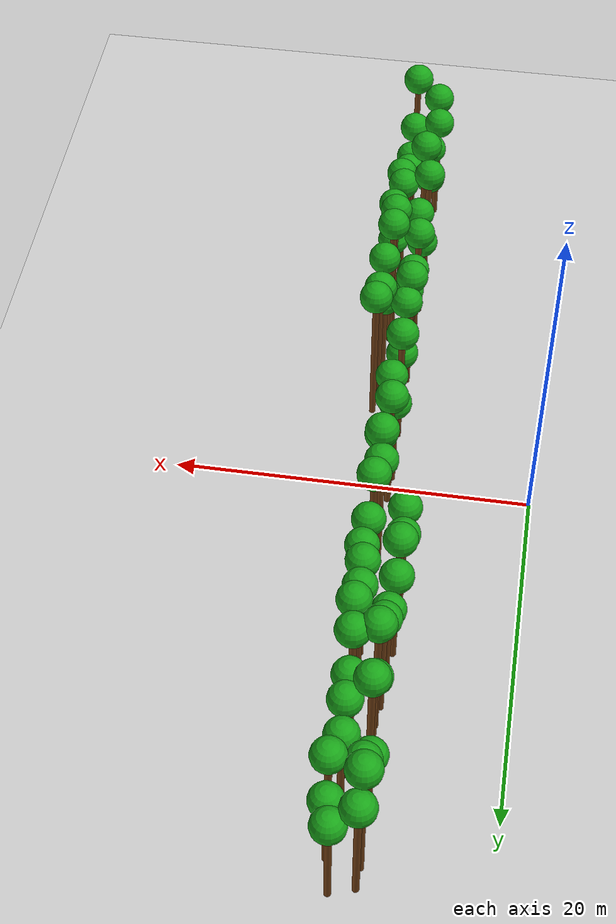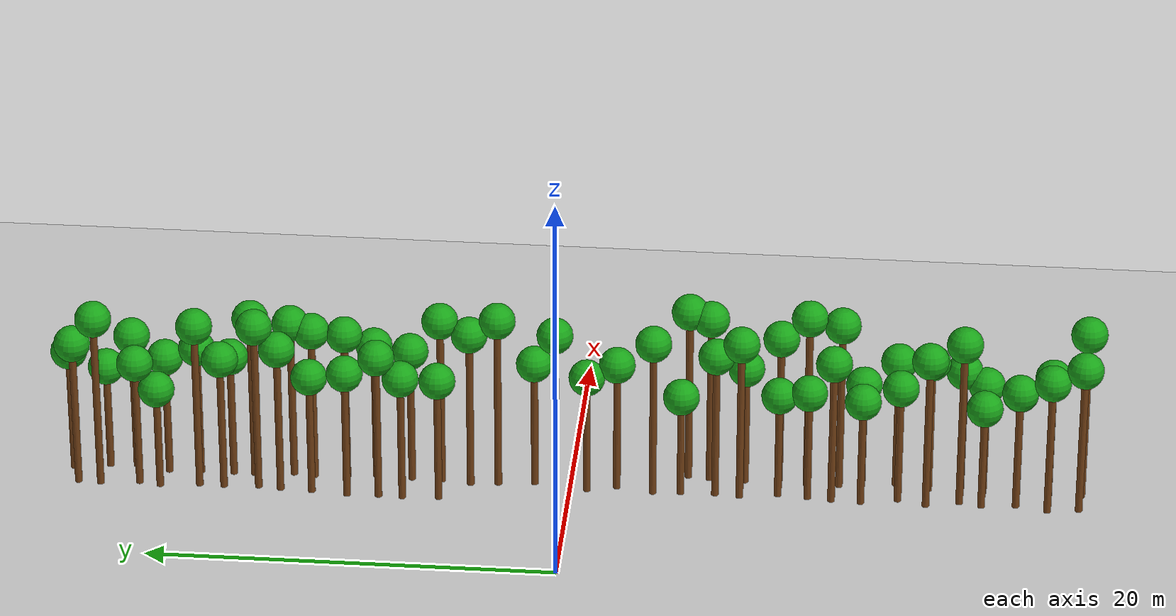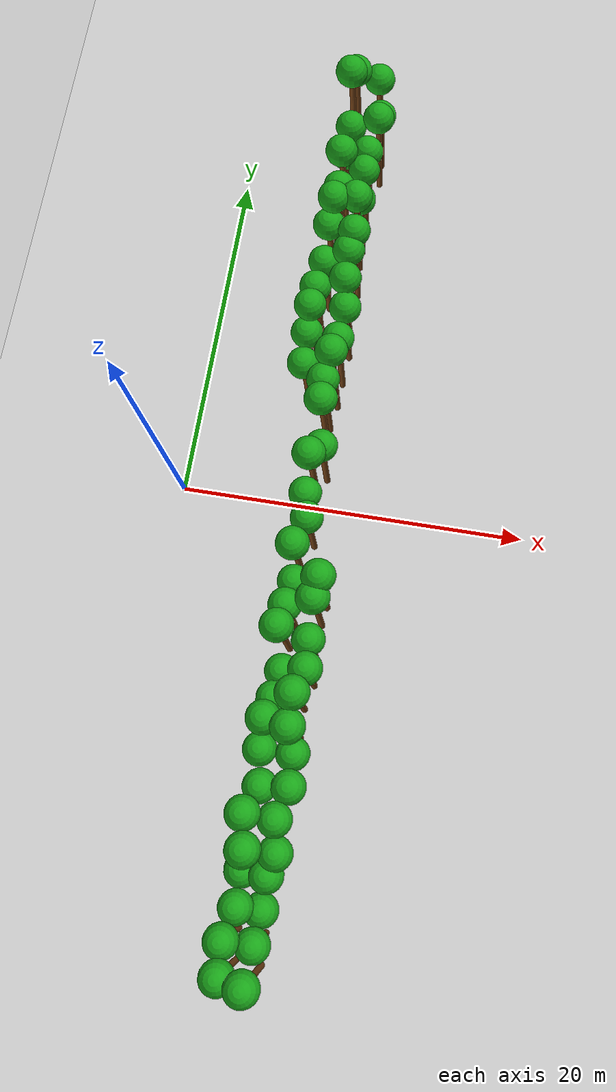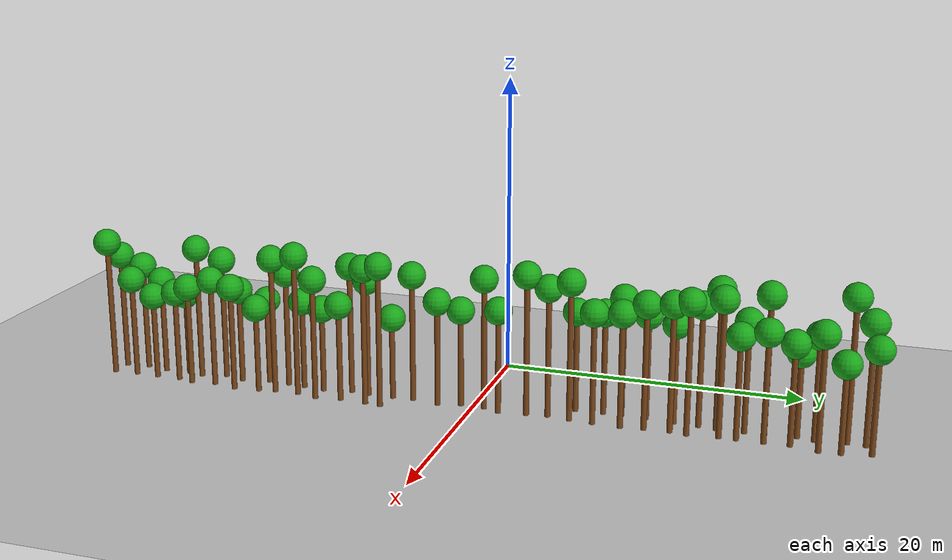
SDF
<sdf version="1.6">
 <world name="forest_world">
  <include><uri>model://sun</uri></include>
  <include><uri>model://ground_plane</uri></include>
  <model name="tree_722">
   <static>true</static>
   <link name="trunk">
    <collision name="collision">
     <pose>6.43 6.38 3.09 0 0 0</pose>
     <geometry><cylinder><radius>0.18</radius><length>6.18</length></cylinder></geometry>
    </collision>
    <visual name="trunk_visual">
     <pose>6.43 6.38 3.09 0 0 0</pose>
     <geometry><cylinder><radius>0.18</radius><length>6.18</length></cylinder></geometry>
     <material><ambient>0.35 0.20 0.05 1</ambient><diffuse>0.45 0.25 0.08 1</diffuse></material>
    </visual>
    <visual name="leaf_visual">
     <pose>6.43 6.38 6.63 0 0 0</pose>
     <geometry><sphere><radius>0.9</radius></sphere></geometry>
     <material><ambient>0.05 0.45 0.05 1</ambient><diffuse>0.10 0.65 0.10 1</diffuse></material>
    </visual>
   </link>
  </model>
  <model name="tree_723">
   <static>true</static>
   <link name="trunk">
    <collision name="collision">
     <pose>6.33 8.17 3.13 0 0 0</pose>
     <geometry><cylinder><radius>0.18</radius><length>6.26</length></cylinder></geometry>
    </collision>
    <visual name="trunk_visual">
     <pose>6.33 8.17 3.13 0 0 0</pose>
     <geometry><cylinder><radius>0.18</radius><length>6.26</length></cylinder></geometry>
     <material><ambient>0.35 0.20 0.05 1</ambient><diffuse>0.45 0.25 0.08 1</diffuse></material>
    </visual>
    <visual name="leaf_visual">
     <pose>6.33 8.17 6.71 0 0 0</pose>
     <geometry><sphere><radius>0.9</radius></sphere></geometry>
     <material><ambient>0.05 0.45 0.05 1</ambient><diffuse>0.10 0.65 0.10 1</diffuse></material>
    </visual>
   </link>
  </model>
  <model name="tree_724">
   <static>true</static>
   <link name="trunk">
    <collision name="collision">
     <pose>6.37 9.35 3.68 0 0 0</pose>
     <geometry><cylinder><radius>0.18</radius><length>7.36</length></cylinder></geometry>
    </collision>
    <visual name="trunk_visual">
     <pose>6.37 9.35 3.68 0 0 0</pose>
     <geometry><cylinder><radius>0.18</radius><length>7.36</length></cylinder></geometry>
     <material><ambient>0.35 0.20 0.05 1</ambient><diffuse>0.45 0.25 0.08 1</diffuse></material>
    </visual>
    <visual name="leaf_visual">
     <pose>6.37 9.35 7.81 0 0 0</pose>
     <geometry><sphere><radius>0.9</radius></sphere></geometry>
     <material><ambient>0.05 0.45 0.05 1</ambient><diffuse>0.10 0.65 0.10 1</diffuse></material>
    </visual>
   </link>
  </model>
  <model name="tree_725">
   <static>true</static>
   <link name="trunk">
    <collision name="collision">
     <pose>6.34 10.91 3.21 0 0 0</pose>
     <geometry><cylinder><radius>0.18</radius><length>6.42</length></cylinder></geometry>
    </collision>
    <visual name="trunk_visual">
     <pose>6.34 10.91 3.21 0 0 0</pose>
     <geometry><cylinder><radius>0.18</radius><length>6.42</length></cylinder></geometry>
     <material><ambient>0.35 0.20 0.05 1</ambient><diffuse>0.45 0.25 0.08 1</diffuse></material>
    </visual>
    <visual name="leaf_visual">
     <pose>6.34 10.91 6.87 0 0 0</pose>
     <geometry><sphere><radius>0.9</radius></sphere></geometry>
     <material><ambient>0.05 0.45 0.05 1</ambient><diffuse>0.10 0.65 0.10 1</diffuse></material>
    </visual>
   </link>
  </model>
  <model name="tree_726">
   <static>true</static>
   <link name="trunk">
    <collision name="collision">
     <pose>6.51 12.68 3.02 0 0 0</pose>
     <geometry><cylinder><radius>0.18</radius><length>6.04</length></cylinder></geometry>
    </collision>
    <visual name="trunk_visual">
     <pose>6.51 12.68 3.02 0 0 0</pose>
     <geometry><cylinder><radius>0.18</radius><length>6.04</length></cylinder></geometry>
     <material><ambient>0.35 0.20 0.05 1</ambient><diffuse>0.45 0.25 0.08 1</diffuse></material>
    </visual>
    <visual name="leaf_visual">
     <pose>6.51 12.68 6.49 0 0 0</pose>
     <geometry><sphere><radius>0.9</radius></sphere></geometry>
     <material><ambient>0.05 0.45 0.05 1</ambient><diffuse>0.10 0.65 0.10 1</diffuse></material>
    </visual>
   </link>
  </model>
  <model name="tree_727">
   <static>true</static>
   <link name="trunk">
    <collision name="collision">
     <pose>6.58 14.24 3.74 0 0 0</pose>
     <geometry><cylinder><radius>0.18</radius><length>7.47</length></cylinder></geometry>
    </collision>
    <visual name="trunk_visual">
     <pose>6.58 14.24 3.74 0 0 0</pose>
     <geometry><cylinder><radius>0.18</radius><length>7.47</length></cylinder></geometry>
     <material><ambient>0.35 0.20 0.05 1</ambient><diffuse>0.45 0.25 0.08 1</diffuse></material>
    </visual>
    <visual name="leaf_visual">
     <pose>6.58 14.24 7.92 0 0 0</pose>
     <geometry><sphere><radius>0.9</radius></sphere></geometry>
     <material><ambient>0.05 0.45 0.05 1</ambient><diffuse>0.10 0.65 0.10 1</diffuse></material>
    </visual>
   </link>
  </model>
  <model name="tree_728">
   <static>true</static>
   <link name="trunk">
    <collision name="collision">
     <pose>6.72 15.35 4.29 0 0 0</pose>
     <geometry><cylinder><radius>0.18</radius><length>8.58</length></cylinder></geometry>
    </collision>
    <visual name="trunk_visual">
     <pose>6.72 15.35 4.29 0 0 0</pose>
     <geometry><cylinder><radius>0.18</radius><length>8.58</length></cylinder></geometry>
     <material><ambient>0.35 0.20 0.05 1</ambient><diffuse>0.45 0.25 0.08 1</diffuse></material>
    </visual>
    <visual name="leaf_visual">
     <pose>6.72 15.35 9.03 0 0 0</pose>
     <geometry><sphere><radius>0.9</radius></sphere></geometry>
     <material><ambient>0.05 0.45 0.05 1</ambient><diffuse>0.10 0.65 0.10 1</diffuse></material>
    </visual>
   </link>
  </model>
  <model name="tree_729">
   <static>true</static>
   <link name="trunk">
    <collision name="collision">
     <pose>6.65 17.07 3.36 0 0 0</pose>
     <geometry><cylinder><radius>0.18</radius><length>6.73</length></cylinder></geometry>
    </collision>
    <visual name="trunk_visual">
     <pose>6.65 17.07 3.36 0 0 0</pose>
     <geometry><cylinder><radius>0.18</radius><length>6.73</length></cylinder></geometry>
     <material><ambient>0.35 0.20 0.05 1</ambient><diffuse>0.45 0.25 0.08 1</diffuse></material>
    </visual>
    <visual name="leaf_visual">
     <pose>6.65 17.07 7.18 0 0 0</pose>
     <geometry><sphere><radius>0.9</radius></sphere></geometry>
     <material><ambient>0.05 0.45 0.05 1</ambient><diffuse>0.10 0.65 0.10 1</diffuse></material>
    </visual>
   </link>
  </model>
  <model name="tree_730">
   <static>true</static>
   <link name="trunk">
    <collision name="collision">
     <pose>6.65 18.28 4.26 0 0 0</pose>
     <geometry><cylinder><radius>0.18</radius><length>8.52</length></cylinder></geometry>
    </collision>
    <visual name="trunk_visual">
     <pose>6.65 18.28 4.26 0 0 0</pose>
     <geometry><cylinder><radius>0.18</radius><length>8.52</length></cylinder></geometry>
     <material><ambient>0.35 0.20 0.05 1</ambient><diffuse>0.45 0.25 0.08 1</diffuse></material>
    </visual>
    <visual name="leaf_visual">
     <pose>6.65 18.28 8.97 0 0 0</pose>
     <geometry><sphere><radius>0.9</radius></sphere></geometry>
     <material><ambient>0.05 0.45 0.05 1</ambient><diffuse>0.10 0.65 0.10 1</diffuse></material>
    </visual>
   </link>
  </model>
  <model name="tree_731">
   <static>true</static>
   <link name="trunk">
    <collision name="collision">
     <pose>6.43 20.22 2.51 0 0 0</pose>
     <geometry><cylinder><radius>0.18</radius><length>5.02</length></cylinder></geometry>
    </collision>
    <visual name="trunk_visual">
     <pose>6.43 20.22 2.51 0 0 0</pose>
     <geometry><cylinder><radius>0.18</radius><length>5.02</length></cylinder></geometry>
     <material><ambient>0.35 0.20 0.05 1</ambient><diffuse>0.45 0.25 0.08 1</diffuse></material>
    </visual>
    <visual name="leaf_visual">
     <pose>6.43 20.22 5.47 0 0 0</pose>
     <geometry><sphere><radius>0.9</radius></sphere></geometry>
     <material><ambient>0.05 0.45 0.05 1</ambient><diffuse>0.10 0.65 0.10 1</diffuse></material>
    </visual>
   </link>
  </model>
  <model name="tree_732">
   <static>true</static>
   <link name="trunk">
    <collision name="collision">
     <pose>6.63 21.27 3.15 0 0 0</pose>
     <geometry><cylinder><radius>0.18</radius><length>6.31</length></cylinder></geometry>
    </collision>
    <visual name="trunk_visual">
     <pose>6.63 21.27 3.15 0 0 0</pose>
     <geometry><cylinder><radius>0.18</radius><length>6.31</length></cylinder></geometry>
     <material><ambient>0.35 0.20 0.05 1</ambient><diffuse>0.45 0.25 0.08 1</diffuse></material>
    </visual>
    <visual name="leaf_visual">
     <pose>6.63 21.27 6.76 0 0 0</pose>
     <geometry><sphere><radius>0.9</radius></sphere></geometry>
     <material><ambient>0.05 0.45 0.05 1</ambient><diffuse>0.10 0.65 0.10 1</diffuse></material>
    </visual>
   </link>
  </model>
  <model name="tree_733">
   <static>true</static>
   <link name="trunk">
    <collision name="collision">
     <pose>6.41 23.19 4.40 0 0 0</pose>
     <geometry><cylinder><radius>0.18</radius><length>8.81</length></cylinder></geometry>
    </collision>
    <visual name="trunk_visual">
     <pose>6.41 23.19 4.40 0 0 0</pose>
     <geometry><cylinder><radius>0.18</radius><length>8.81</length></cylinder></geometry>
     <material><ambient>0.35 0.20 0.05 1</ambient><diffuse>0.45 0.25 0.08 1</diffuse></material>
    </visual>
    <visual name="leaf_visual">
     <pose>6.41 23.19 9.26 0 0 0</pose>
     <geometry><sphere><radius>0.9</radius></sphere></geometry>
     <material><ambient>0.05 0.45 0.05 1</ambient><diffuse>0.10 0.65 0.10 1</diffuse></material>
    </visual>
   </link>
  </model>
  <model name="tree_734">
   <static>true</static>
   <link name="trunk">
    <collision name="collision">
     <pose>6.48 24.30 3.67 0 0 0</pose>
     <geometry><cylinder><radius>0.18</radius><length>7.35</length></cylinder></geometry>
    </collision>
    <visual name="trunk_visual">
     <pose>6.48 24.30 3.67 0 0 0</pose>
     <geometry><cylinder><radius>0.18</radius><length>7.35</length></cylinder></geometry>
     <material><ambient>0.35 0.20 0.05 1</ambient><diffuse>0.45 0.25 0.08 1</diffuse></material>
    </visual>
    <visual name="leaf_visual">
     <pose>6.48 24.30 7.80 0 0 0</pose>
     <geometry><sphere><radius>0.9</radius></sphere></geometry>
     <material><ambient>0.05 0.45 0.05 1</ambient><diffuse>0.10 0.65 0.10 1</diffuse></material>
    </visual>
   </link>
  </model>
  <model name="tree_735">
   <static>true</static>
   <link name="trunk">
    <collision name="collision">
     <pose>7.98 -25.03 3.73 0 0 0</pose>
     <geometry><cylinder><radius>0.18</radius><length>7.46</length></cylinder></geometry>
    </collision>
    <visual name="trunk_visual">
     <pose>7.98 -25.03 3.73 0 0 0</pose>
     <geometry><cylinder><radius>0.18</radius><length>7.46</length></cylinder></geometry>
     <material><ambient>0.35 0.20 0.05 1</ambient><diffuse>0.45 0.25 0.08 1</diffuse></material>
    </visual>
    <visual name="leaf_visual">
     <pose>7.98 -25.03 7.91 0 0 0</pose>
     <geometry><sphere><radius>0.9</radius></sphere></geometry>
     <material><ambient>0.05 0.45 0.05 1</ambient><diffuse>0.10 0.65 0.10 1</diffuse></material>
    </visual>
   </link>
  </model>
  <model name="tree_736">
   <static>true</static>
   <link name="trunk">
    <collision name="collision">
     <pose>7.78 -23.49 3.39 0 0 0</pose>
     <geometry><cylinder><radius>0.18</radius><length>6.79</length></cylinder></geometry>
    </collision>
    <visual name="trunk_visual">
     <pose>7.78 -23.49 3.39 0 0 0</pose>
     <geometry><cylinder><radius>0.18</radius><length>6.79</length></cylinder></geometry>
     <material><ambient>0.35 0.20 0.05 1</ambient><diffuse>0.45 0.25 0.08 1</diffuse></material>
    </visual>
    <visual name="leaf_visual">
     <pose>7.78 -23.49 7.24 0 0 0</pose>
     <geometry><sphere><radius>0.9</radius></sphere></geometry>
     <material><ambient>0.05 0.45 0.05 1</ambient><diffuse>0.10 0.65 0.10 1</diffuse></material>
    </visual>
   </link>
  </model>
  <model name="tree_737">
   <static>true</static>
   <link name="trunk">
    <collision name="collision">
     <pose>8.10 -21.94 3.00 0 0 0</pose>
     <geometry><cylinder><radius>0.18</radius><length>5.99</length></cylinder></geometry>
    </collision>
    <visual name="trunk_visual">
     <pose>8.10 -21.94 3.00 0 0 0</pose>
     <geometry><cylinder><radius>0.18</radius><length>5.99</length></cylinder></geometry>
     <material><ambient>0.35 0.20 0.05 1</ambient><diffuse>0.45 0.25 0.08 1</diffuse></material>
    </visual>
    <visual name="leaf_visual">
     <pose>8.10 -21.94 6.44 0 0 0</pose>
     <geometry><sphere><radius>0.9</radius></sphere></geometry>
     <material><ambient>0.05 0.45 0.05 1</ambient><diffuse>0.10 0.65 0.10 1</diffuse></material>
    </visual>
   </link>
  </model>
  <model name="tree_738">
   <static>true</static>
   <link name="trunk">
    <collision name="collision">
     <pose>7.96 -20.25 2.55 0 0 0</pose>
     <geometry><cylinder><radius>0.18</radius><length>5.10</length></cylinder></geometry>
    </collision>
    <visual name="trunk_visual">
     <pose>7.96 -20.25 2.55 0 0 0</pose>
     <geometry><cylinder><radius>0.18</radius><length>5.10</length></cylinder></geometry>
     <material><ambient>0.35 0.20 0.05 1</ambient><diffuse>0.45 0.25 0.08 1</diffuse></material>
    </visual>
    <visual name="leaf_visual">
     <pose>7.96 -20.25 5.55 0 0 0</pose>
     <geometry><sphere><radius>0.9</radius></sphere></geometry>
     <material><ambient>0.05 0.45 0.05 1</ambient><diffuse>0.10 0.65 0.10 1</diffuse></material>
    </visual>
   </link>
  </model>
  <model name="tree_739">
   <static>true</static>
   <link name="trunk">
    <collision name="collision">
     <pose>8.20 -19.17 4.24 0 0 0</pose>
     <geometry><cylinder><radius>0.18</radius><length>8.48</length></cylinder></geometry>
    </collision>
    <visual name="trunk_visual">
     <pose>8.20 -19.17 4.24 0 0 0</pose>
     <geometry><cylinder><radius>0.18</radius><length>8.48</length></cylinder></geometry>
     <material><ambient>0.35 0.20 0.05 1</ambient><diffuse>0.45 0.25 0.08 1</diffuse></material>
    </visual>
    <visual name="leaf_visual">
     <pose>8.20 -19.17 8.93 0 0 0</pose>
     <geometry><sphere><radius>0.9</radius></sphere></geometry>
     <material><ambient>0.05 0.45 0.05 1</ambient><diffuse>0.10 0.65 0.10 1</diffuse></material>
    </visual>
   </link>
  </model>
  <model name="tree_740">
   <static>true</static>
   <link name="trunk">
    <collision name="collision">
     <pose>7.79 -17.53 3.86 0 0 0</pose>
     <geometry><cylinder><radius>0.18</radius><length>7.72</length></cylinder></geometry>
    </collision>
    <visual name="trunk_visual">
     <pose>7.79 -17.53 3.86 0 0 0</pose>
     <geometry><cylinder><radius>0.18</radius><length>7.72</length></cylinder></geometry>
     <material><ambient>0.35 0.20 0.05 1</ambient><diffuse>0.45 0.25 0.08 1</diffuse></material>
    </visual>
    <visual name="leaf_visual">
     <pose>7.79 -17.53 8.17 0 0 0</pose>
     <geometry><sphere><radius>0.9</radius></sphere></geometry>
     <material><ambient>0.05 0.45 0.05 1</ambient><diffuse>0.10 0.65 0.10 1</diffuse></material>
    </visual>
   </link>
  </model>
  <model name="tree_741">
   <static>true</static>
   <link name="trunk">
    <collision name="collision">
     <pose>8.19 -16.14 2.94 0 0 0</pose>
     <geometry><cylinder><radius>0.18</radius><length>5.89</length></cylinder></geometry>
    </collision>
    <visual name="trunk_visual">
     <pose>8.19 -16.14 2.94 0 0 0</pose>
     <geometry><cylinder><radius>0.18</radius><length>5.89</length></cylinder></geometry>
     <material><ambient>0.35 0.20 0.05 1</ambient><diffuse>0.45 0.25 0.08 1</diffuse></material>
    </visual>
    <visual name="leaf_visual">
     <pose>8.19 -16.14 6.34 0 0 0</pose>
     <geometry><sphere><radius>0.9</radius></sphere></geometry>
     <material><ambient>0.05 0.45 0.05 1</ambient><diffuse>0.10 0.65 0.10 1</diffuse></material>
    </visual>
   </link>
  </model>
  <model name="tree_742">
   <static>true</static>
   <link name="trunk">
    <collision name="collision">
     <pose>7.79 -14.33 2.64 0 0 0</pose>
     <geometry><cylinder><radius>0.18</radius><length>5.28</length></cylinder></geometry>
    </collision>
    <visual name="trunk_visual">
     <pose>7.79 -14.33 2.64 0 0 0</pose>
     <geometry><cylinder><radius>0.18</radius><length>5.28</length></cylinder></geometry>
     <material><ambient>0.35 0.20 0.05 1</ambient><diffuse>0.45 0.25 0.08 1</diffuse></material>
    </visual>
    <visual name="leaf_visual">
     <pose>7.79 -14.33 5.73 0 0 0</pose>
     <geometry><sphere><radius>0.9</radius></sphere></geometry>
     <material><ambient>0.05 0.45 0.05 1</ambient><diffuse>0.10 0.65 0.10 1</diffuse></material>
    </visual>
   </link>
  </model>
  <model name="tree_743">
   <static>true</static>
   <link name="trunk">
    <collision name="collision">
     <pose>7.88 -12.88 3.63 0 0 0</pose>
     <geometry><cylinder><radius>0.18</radius><length>7.27</length></cylinder></geometry>
    </collision>
    <visual name="trunk_visual">
     <pose>7.88 -12.88 3.63 0 0 0</pose>
     <geometry><cylinder><radius>0.18</radius><length>7.27</length></cylinder></geometry>
     <material><ambient>0.35 0.20 0.05 1</ambient><diffuse>0.45 0.25 0.08 1</diffuse></material>
    </visual>
    <visual name="leaf_visual">
     <pose>7.88 -12.88 7.72 0 0 0</pose>
     <geometry><sphere><radius>0.9</radius></sphere></geometry>
     <material><ambient>0.05 0.45 0.05 1</ambient><diffuse>0.10 0.65 0.10 1</diffuse></material>
    </visual>
   </link>
  </model>
  <model name="tree_744">
   <static>true</static>
   <link name="trunk">
    <collision name="collision">
     <pose>8.01 -11.70 2.75 0 0 0</pose>
     <geometry><cylinder><radius>0.18</radius><length>5.50</length></cylinder></geometry>
    </collision>
    <visual name="trunk_visual">
     <pose>8.01 -11.70 2.75 0 0 0</pose>
     <geometry><cylinder><radius>0.18</radius><length>5.50</length></cylinder></geometry>
     <material><ambient>0.35 0.20 0.05 1</ambient><diffuse>0.45 0.25 0.08 1</diffuse></material>
    </visual>
    <visual name="leaf_visual">
     <pose>8.01 -11.70 5.95 0 0 0</pose>
     <geometry><sphere><radius>0.9</radius></sphere></geometry>
     <material><ambient>0.05 0.45 0.05 1</ambient><diffuse>0.10 0.65 0.10 1</diffuse></material>
    </visual>
   </link>
  </model>
  <model name="tree_745">
   <static>true</static>
   <link name="trunk">
    <collision name="collision">
     <pose>8.16 -10.24 2.60 0 0 0</pose>
     <geometry><cylinder><radius>0.18</radius><length>5.20</length></cylinder></geometry>
    </collision>
    <visual name="trunk_visual">
     <pose>8.16 -10.24 2.60 0 0 0</pose>
     <geometry><cylinder><radius>0.18</radius><length>5.20</length></cylinder></geometry>
     <material><ambient>0.35 0.20 0.05 1</ambient><diffuse>0.45 0.25 0.08 1</diffuse></material>
    </visual>
    <visual name="leaf_visual">
     <pose>8.16 -10.24 5.65 0 0 0</pose>
     <geometry><sphere><radius>0.9</radius></sphere></geometry>
     <material><ambient>0.05 0.45 0.05 1</ambient><diffuse>0.10 0.65 0.10 1</diffuse></material>
    </visual>
   </link>
  </model>
  <model name="tree_746">
   <static>true</static>
   <link name="trunk">
    <collision name="collision">
     <pose>7.83 -8.37 4.08 0 0 0</pose>
     <geometry><cylinder><radius>0.18</radius><length>8.15</length></cylinder></geometry>
    </collision>
    <visual name="trunk_visual">
     <pose>7.83 -8.37 4.08 0 0 0</pose>
     <geometry><cylinder><radius>0.18</radius><length>8.15</length></cylinder></geometry>
     <material><ambient>0.35 0.20 0.05 1</ambient><diffuse>0.45 0.25 0.08 1</diffuse></material>
    </visual>
    <visual name="leaf_visual">
     <pose>7.83 -8.37 8.60 0 0 0</pose>
     <geometry><sphere><radius>0.9</radius></sphere></geometry>
     <material><ambient>0.05 0.45 0.05 1</ambient><diffuse>0.10 0.65 0.10 1</diffuse></material>
    </visual>
   </link>
  </model>
  <model name="tree_747">
   <static>true</static>
   <link name="trunk">
    <collision name="collision">
     <pose>7.97 -7.15 3.67 0 0 0</pose>
     <geometry><cylinder><radius>0.18</radius><length>7.35</length></cylinder></geometry>
    </collision>
    <visual name="trunk_visual">
     <pose>7.97 -7.15 3.67 0 0 0</pose>
     <geometry><cylinder><radius>0.18</radius><length>7.35</length></cylinder></geometry>
     <material><ambient>0.35 0.20 0.05 1</ambient><diffuse>0.45 0.25 0.08 1</diffuse></material>
    </visual>
    <visual name="leaf_visual">
     <pose>7.97 -7.15 7.80 0 0 0</pose>
     <geometry><sphere><radius>0.9</radius></sphere></geometry>
     <material><ambient>0.05 0.45 0.05 1</ambient><diffuse>0.10 0.65 0.10 1</diffuse></material>
    </visual>
   </link>
  </model>
  <model name="tree_748">
   <static>true</static>
   <link name="trunk">
    <collision name="collision">
     <pose>7.94 -5.45 2.50 0 0 0</pose>
     <geometry><cylinder><radius>0.18</radius><length>5.01</length></cylinder></geometry>
    </collision>
    <visual name="trunk_visual">
     <pose>7.94 -5.45 2.50 0 0 0</pose>
     <geometry><cylinder><radius>0.18</radius><length>5.01</length></cylinder></geometry>
     <material><ambient>0.35 0.20 0.05 1</ambient><diffuse>0.45 0.25 0.08 1</diffuse></material>
    </visual>
    <visual name="leaf_visual">
     <pose>7.94 -5.45 5.46 0 0 0</pose>
     <geometry><sphere><radius>0.9</radius></sphere></geometry>
     <material><ambient>0.05 0.45 0.05 1</ambient><diffuse>0.10 0.65 0.10 1</diffuse></material>
    </visual>
   </link>
  </model>
  <model name="tree_749">
   <static>true</static>
   <link name="trunk">
    <collision name="collision">
     <pose>7.85 -4.08 3.98 0 0 0</pose>
     <geometry><cylinder><radius>0.18</radius><length>7.97</length></cylinder></geometry>
    </collision>
    <visual name="trunk_visual">
     <pose>7.85 -4.08 3.98 0 0 0</pose>
     <geometry><cylinder><radius>0.18</radius><length>7.97</length></cylinder></geometry>
     <material><ambient>0.35 0.20 0.05 1</ambient><diffuse>0.45 0.25 0.08 1</diffuse></material>
    </visual>
    <visual name="leaf_visual">
     <pose>7.85 -4.08 8.42 0 0 0</pose>
     <geometry><sphere><radius>0.9</radius></sphere></geometry>
     <material><ambient>0.05 0.45 0.05 1</ambient><diffuse>0.10 0.65 0.10 1</diffuse></material>
    </visual>
   </link>
  </model>
  <model name="tree_750">
   <static>true</static>
   <link name="trunk">
    <collision name="collision">
     <pose>8.18 -2.28 3.26 0 0 0</pose>
     <geometry><cylinder><radius>0.18</radius><length>6.51</length></cylinder></geometry>
    </collision>
    <visual name="trunk_visual">
     <pose>8.18 -2.28 3.26 0 0 0</pose>
     <geometry><cylinder><radius>0.18</radius><length>6.51</length></cylinder></geometry>
     <material><ambient>0.35 0.20 0.05 1</ambient><diffuse>0.45 0.25 0.08 1</diffuse></material>
    </visual>
    <visual name="leaf_visual">
     <pose>8.18 -2.28 6.96 0 0 0</pose>
     <geometry><sphere><radius>0.9</radius></sphere></geometry>
     <material><ambient>0.05 0.45 0.05 1</ambient><diffuse>0.10 0.65 0.10 1</diffuse></material>
    </visual>
   </link>
  </model>
  <model name="tree_751">
   <static>true</static>
   <link name="trunk">
    <collision name="collision">
     <pose>7.80 -0.83 2.98 0 0 0</pose>
     <geometry><cylinder><radius>0.18</radius><length>5.95</length></cylinder></geometry>
    </collision>
    <visual name="trunk_visual">
     <pose>7.80 -0.83 2.98 0 0 0</pose>
     <geometry><cylinder><radius>0.18</radius><length>5.95</length></cylinder></geometry>
     <material><ambient>0.35 0.20 0.05 1</ambient><diffuse>0.45 0.25 0.08 1</diffuse></material>
    </visual>
    <visual name="leaf_visual">
     <pose>7.80 -0.83 6.40 0 0 0</pose>
     <geometry><sphere><radius>0.9</radius></sphere></geometry>
     <material><ambient>0.05 0.45 0.05 1</ambient><diffuse>0.10 0.65 0.10 1</diffuse></material>
    </visual>
   </link>
  </model>
  <model name="tree_752">
   <static>true</static>
   <link name="trunk">
    <collision name="collision">
     <pose>7.86 0.74 4.10 0 0 0</pose>
     <geometry><cylinder><radius>0.18</radius><length>8.19</length></cylinder></geometry>
    </collision>
    <visual name="trunk_visual">
     <pose>7.86 0.74 4.10 0 0 0</pose>
     <geometry><cylinder><radius>0.18</radius><length>8.19</length></cylinder></geometry>
     <material><ambient>0.35 0.20 0.05 1</ambient><diffuse>0.45 0.25 0.08 1</diffuse></material>
    </visual>
    <visual name="leaf_visual">
     <pose>7.86 0.74 8.64 0 0 0</pose>
     <geometry><sphere><radius>0.9</radius></sphere></geometry>
     <material><ambient>0.05 0.45 0.05 1</ambient><diffuse>0.10 0.65 0.10 1</diffuse></material>
    </visual>
   </link>
  </model>
  <model name="tree_753">
   <static>true</static>
   <link name="trunk">
    <collision name="collision">
     <pose>8.24 1.79 3.17 0 0 0</pose>
     <geometry><cylinder><radius>0.18</radius><length>6.34</length></cylinder></geometry>
    </collision>
    <visual name="trunk_visual">
     <pose>8.24 1.79 3.17 0 0 0</pose>
     <geometry><cylinder><radius>0.18</radius><length>6.34</length></cylinder></geometry>
     <material><ambient>0.35 0.20 0.05 1</ambient><diffuse>0.45 0.25 0.08 1</diffuse></material>
    </visual>
    <visual name="leaf_visual">
     <pose>8.24 1.79 6.79 0 0 0</pose>
     <geometry><sphere><radius>0.9</radius></sphere></geometry>
     <material><ambient>0.05 0.45 0.05 1</ambient><diffuse>0.10 0.65 0.10 1</diffuse></material>
    </visual>
   </link>
  </model>
  <model name="tree_754">
   <static>true</static>
   <link name="trunk">
    <collision name="collision">
     <pose>8.03 3.58 4.39 0 0 0</pose>
     <geometry><cylinder><radius>0.18</radius><length>8.77</length></cylinder></geometry>
    </collision>
    <visual name="trunk_visual">
     <pose>8.03 3.58 4.39 0 0 0</pose>
     <geometry><cylinder><radius>0.18</radius><length>8.77</length></cylinder></geometry>
     <material><ambient>0.35 0.20 0.05 1</ambient><diffuse>0.45 0.25 0.08 1</diffuse></material>
    </visual>
    <visual name="leaf_visual">
     <pose>8.03 3.58 9.22 0 0 0</pose>
     <geometry><sphere><radius>0.9</radius></sphere></geometry>
     <material><ambient>0.05 0.45 0.05 1</ambient><diffuse>0.10 0.65 0.10 1</diffuse></material>
    </visual>
   </link>
  </model>
  <model name="tree_755">
   <static>true</static>
   <link name="trunk">
    <collision name="collision">
     <pose>7.88 4.94 4.01 0 0 0</pose>
     <geometry><cylinder><radius>0.18</radius><length>8.01</length></cylinder></geometry>
    </collision>
    <visual name="trunk_visual">
     <pose>7.88 4.94 4.01 0 0 0</pose>
     <geometry><cylinder><radius>0.18</radius><length>8.01</length></cylinder></geometry>
     <material><ambient>0.35 0.20 0.05 1</ambient><diffuse>0.45 0.25 0.08 1</diffuse></material>
    </visual>
    <visual name="leaf_visual">
     <pose>7.88 4.94 8.46 0 0 0</pose>
     <geometry><sphere><radius>0.9</radius></sphere></geometry>
     <material><ambient>0.05 0.45 0.05 1</ambient><diffuse>0.10 0.65 0.10 1</diffuse></material>
    </visual>
   </link>
  </model>
  <model name="tree_756">
   <static>true</static>
   <link name="trunk">
    <collision name="collision">
     <pose>8.09 6.39 4.30 0 0 0</pose>
     <geometry><cylinder><radius>0.18</radius><length>8.59</length></cylinder></geometry>
    </collision>
    <visual name="trunk_visual">
     <pose>8.09 6.39 4.30 0 0 0</pose>
     <geometry><cylinder><radius>0.18</radius><length>8.59</length></cylinder></geometry>
     <material><ambient>0.35 0.20 0.05 1</ambient><diffuse>0.45 0.25 0.08 1</diffuse></material>
    </visual>
    <visual name="leaf_visual">
     <pose>8.09 6.39 9.04 0 0 0</pose>
     <geometry><sphere><radius>0.9</radius></sphere></geometry>
     <material><ambient>0.05 0.45 0.05 1</ambient><diffuse>0.10 0.65 0.10 1</diffuse></material>
    </visual>
   </link>
  </model>
  <model name="tree_757">
   <static>true</static>
   <link name="trunk">
    <collision name="collision">
     <pose>8.14 7.88 3.40 0 0 0</pose>
     <geometry><cylinder><radius>0.18</radius><length>6.80</length></cylinder></geometry>
    </collision>
    <visual name="trunk_visual">
     <pose>8.14 7.88 3.40 0 0 0</pose>
     <geometry><cylinder><radius>0.18</radius><length>6.80</length></cylinder></geometry>
     <material><ambient>0.35 0.20 0.05 1</ambient><diffuse>0.45 0.25 0.08 1</diffuse></material>
    </visual>
    <visual name="leaf_visual">
     <pose>8.14 7.88 7.25 0 0 0</pose>
     <geometry><sphere><radius>0.9</radius></sphere></geometry>
     <material><ambient>0.05 0.45 0.05 1</ambient><diffuse>0.10 0.65 0.10 1</diffuse></material>
    </visual>
   </link>
  </model>
  <model name="tree_758">
   <static>true</static>
   <link name="trunk">
    <collision name="collision">
     <pose>8.24 9.66 3.49 0 0 0</pose>
     <geometry><cylinder><radius>0.18</radius><length>6.97</length></cylinder></geometry>
    </collision>
    <visual name="trunk_visual">
     <pose>8.24 9.66 3.49 0 0 0</pose>
     <geometry><cylinder><radius>0.18</radius><length>6.97</length></cylinder></geometry>
     <material><ambient>0.35 0.20 0.05 1</ambient><diffuse>0.45 0.25 0.08 1</diffuse></material>
    </visual>
    <visual name="leaf_visual">
     <pose>8.24 9.66 7.42 0 0 0</pose>
     <geometry><sphere><radius>0.9</radius></sphere></geometry>
     <material><ambient>0.05 0.45 0.05 1</ambient><diffuse>0.10 0.65 0.10 1</diffuse></material>
    </visual>
   </link>
  </model>
  <model name="tree_759">
   <static>true</static>
   <link name="trunk">
    <collision name="collision">
     <pose>8.03 11.10 3.82 0 0 0</pose>
     <geometry><cylinder><radius>0.18</radius><length>7.64</length></cylinder></geometry>
    </collision>
    <visual name="trunk_visual">
     <pose>8.03 11.10 3.82 0 0 0</pose>
     <geometry><cylinder><radius>0.18</radius><length>7.64</length></cylinder></geometry>
     <material><ambient>0.35 0.20 0.05 1</ambient><diffuse>0.45 0.25 0.08 1</diffuse></material>
    </visual>
    <visual name="leaf_visual">
     <pose>8.03 11.10 8.09 0 0 0</pose>
     <geometry><sphere><radius>0.9</radius></sphere></geometry>
     <material><ambient>0.05 0.45 0.05 1</ambient><diffuse>0.10 0.65 0.10 1</diffuse></material>
    </visual>
   </link>
  </model>
  <model name="tree_760">
   <static>true</static>
   <link name="trunk">
    <collision name="collision">
     <pose>7.96 12.71 3.90 0 0 0</pose>
     <geometry><cylinder><radius>0.18</radius><length>7.79</length></cylinder></geometry>
    </collision>
    <visual name="trunk_visual">
     <pose>7.96 12.71 3.90 0 0 0</pose>
     <geometry><cylinder><radius>0.18</radius><length>7.79</length></cylinder></geometry>
     <material><ambient>0.35 0.20 0.05 1</ambient><diffuse>0.45 0.25 0.08 1</diffuse></material>
    </visual>
    <visual name="leaf_visual">
     <pose>7.96 12.71 8.24 0 0 0</pose>
     <geometry><sphere><radius>0.9</radius></sphere></geometry>
     <material><ambient>0.05 0.45 0.05 1</ambient><diffuse>0.10 0.65 0.10 1</diffuse></material>
    </visual>
   </link>
  </model>
  <model name="tree_761">
   <static>true</static>
   <link name="trunk">
    <collision name="collision">
     <pose>8.10 13.76 4.05 0 0 0</pose>
     <geometry><cylinder><radius>0.18</radius><length>8.10</length></cylinder></geometry>
    </collision>
    <visual name="trunk_visual">
     <pose>8.10 13.76 4.05 0 0 0</pose>
     <geometry><cylinder><radius>0.18</radius><length>8.10</length></cylinder></geometry>
     <material><ambient>0.35 0.20 0.05 1</ambient><diffuse>0.45 0.25 0.08 1</diffuse></material>
    </visual>
    <visual name="leaf_visual">
     <pose>8.10 13.76 8.55 0 0 0</pose>
     <geometry><sphere><radius>0.9</radius></sphere></geometry>
     <material><ambient>0.05 0.45 0.05 1</ambient><diffuse>0.10 0.65 0.10 1</diffuse></material>
    </visual>
   </link>
  </model>
  <model name="tree_762">
   <static>true</static>
   <link name="trunk">
    <collision name="collision">
     <pose>7.91 15.70 4.19 0 0 0</pose>
     <geometry><cylinder><radius>0.18</radius><length>8.39</length></cylinder></geometry>
    </collision>
    <visual name="trunk_visual">
     <pose>7.91 15.70 4.19 0 0 0</pose>
     <geometry><cylinder><radius>0.18</radius><length>8.39</length></cylinder></geometry>
     <material><ambient>0.35 0.20 0.05 1</ambient><diffuse>0.45 0.25 0.08 1</diffuse></material>
    </visual>
    <visual name="leaf_visual">
     <pose>7.91 15.70 8.84 0 0 0</pose>
     <geometry><sphere><radius>0.9</radius></sphere></geometry>
     <material><ambient>0.05 0.45 0.05 1</ambient><diffuse>0.10 0.65 0.10 1</diffuse></material>
    </visual>
   </link>
  </model>
  <model name="tree_763">
   <static>true</static>
   <link name="trunk">
    <collision name="collision">
     <pose>7.90 16.75 3.10 0 0 0</pose>
     <geometry><cylinder><radius>0.18</radius><length>6.19</length></cylinder></geometry>
    </collision>
    <visual name="trunk_visual">
     <pose>7.90 16.75 3.10 0 0 0</pose>
     <geometry><cylinder><radius>0.18</radius><length>6.19</length></cylinder></geometry>
     <material><ambient>0.35 0.20 0.05 1</ambient><diffuse>0.45 0.25 0.08 1</diffuse></material>
    </visual>
    <visual name="leaf_visual">
     <pose>7.90 16.75 6.64 0 0 0</pose>
     <geometry><sphere><radius>0.9</radius></sphere></geometry>
     <material><ambient>0.05 0.45 0.05 1</ambient><diffuse>0.10 0.65 0.10 1</diffuse></material>
    </visual>
   </link>
  </model>
  <model name="tree_764">
   <static>true</static>
   <link name="trunk">
    <collision name="collision">
     <pose>7.88 18.39 3.30 0 0 0</pose>
     <geometry><cylinder><radius>0.18</radius><length>6.61</length></cylinder></geometry>
    </collision>
    <visual name="trunk_visual">
     <pose>7.88 18.39 3.30 0 0 0</pose>
     <geometry><cylinder><radius>0.18</radius><length>6.61</length></cylinder></geometry>
     <material><ambient>0.35 0.20 0.05 1</ambient><diffuse>0.45 0.25 0.08 1</diffuse></material>
    </visual>
    <visual name="leaf_visual">
     <pose>7.88 18.39 7.06 0 0 0</pose>
     <geometry><sphere><radius>0.9</radius></sphere></geometry>
     <material><ambient>0.05 0.45 0.05 1</ambient><diffuse>0.10 0.65 0.10 1</diffuse></material>
    </visual>
   </link>
  </model>
  <model name="tree_765">
   <static>true</static>
   <link name="trunk">
    <collision name="collision">
     <pose>7.82 19.96 3.03 0 0 0</pose>
     <geometry><cylinder><radius>0.18</radius><length>6.05</length></cylinder></geometry>
    </collision>
    <visual name="trunk_visual">
     <pose>7.82 19.96 3.03 0 0 0</pose>
     <geometry><cylinder><radius>0.18</radius><length>6.05</length></cylinder></geometry>
     <material><ambient>0.35 0.20 0.05 1</ambient><diffuse>0.45 0.25 0.08 1</diffuse></material>
    </visual>
    <visual name="leaf_visual">
     <pose>7.82 19.96 6.50 0 0 0</pose>
     <geometry><sphere><radius>0.9</radius></sphere></geometry>
     <material><ambient>0.05 0.45 0.05 1</ambient><diffuse>0.10 0.65 0.10 1</diffuse></material>
    </visual>
   </link>
  </model>
  <model name="tree_766">
   <static>true</static>
   <link name="trunk">
    <collision name="collision">
     <pose>8.20 21.64 3.48 0 0 0</pose>
     <geometry><cylinder><radius>0.18</radius><length>6.96</length></cylinder></geometry>
    </collision>
    <visual name="trunk_visual">
     <pose>8.20 21.64 3.48 0 0 0</pose>
     <geometry><cylinder><radius>0.18</radius><length>6.96</length></cylinder></geometry>
     <material><ambient>0.35 0.20 0.05 1</ambient><diffuse>0.45 0.25 0.08 1</diffuse></material>
    </visual>
    <visual name="leaf_visual">
     <pose>8.20 21.64 7.41 0 0 0</pose>
     <geometry><sphere><radius>0.9</radius></sphere></geometry>
     <material><ambient>0.05 0.45 0.05 1</ambient><diffuse>0.10 0.65 0.10 1</diffuse></material>
    </visual>
   </link>
  </model>
  <model name="tree_767">
   <static>true</static>
   <link name="trunk">
    <collision name="collision">
     <pose>8.11 22.96 2.61 0 0 0</pose>
     <geometry><cylinder><radius>0.18</radius><length>5.21</length></cylinder></geometry>
    </collision>
    <visual name="trunk_visual">
     <pose>8.11 22.96 2.61 0 0 0</pose>
     <geometry><cylinder><radius>0.18</radius><length>5.21</length></cylinder></geometry>
     <material><ambient>0.35 0.20 0.05 1</ambient><diffuse>0.45 0.25 0.08 1</diffuse></material>
    </visual>
    <visual name="leaf_visual">
     <pose>8.11 22.96 5.66 0 0 0</pose>
     <geometry><sphere><radius>0.9</radius></sphere></geometry>
     <material><ambient>0.05 0.45 0.05 1</ambient><diffuse>0.10 0.65 0.10 1</diffuse></material>
    </visual>
   </link>
  </model>
  <model name="tree_768">
   <static>true</static>
   <link name="trunk">
    <collision name="collision">
     <pose>7.77 24.72 3.10 0 0 0</pose>
     <geometry><cylinder><radius>0.18</radius><length>6.19</length></cylinder></geometry>
    </collision>
    <visual name="trunk_visual">
     <pose>7.77 24.72 3.10 0 0 0</pose>
     <geometry><cylinder><radius>0.18</radius><length>6.19</length></cylinder></geometry>
     <material><ambient>0.35 0.20 0.05 1</ambient><diffuse>0.45 0.25 0.08 1</diffuse></material>
    </visual>
    <visual name="leaf_visual">
     <pose>7.77 24.72 6.64 0 0 0</pose>
     <geometry><sphere><radius>0.9</radius></sphere></geometry>
     <material><ambient>0.05 0.45 0.05 1</ambient><diffuse>0.10 0.65 0.10 1</diffuse></material>
    </visual>
   </link>
  </model>
  <model name="tree_769">
   <static>true</static>
   <link name="trunk">
    <collision name="collision">
     <pose>9.33 -25.15 4.35 0 0 0</pose>
     <geometry><cylinder><radius>0.18</radius><length>8.70</length></cylinder></geometry>
    </collision>
    <visual name="trunk_visual">
     <pose>9.33 -25.15 4.35 0 0 0</pose>
     <geometry><cylinder><radius>0.18</radius><length>8.70</length></cylinder></geometry>
     <material><ambient>0.35 0.20 0.05 1</ambient><diffuse>0.45 0.25 0.08 1</diffuse></material>
    </visual>
    <visual name="leaf_visual">
     <pose>9.33 -25.15 9.15 0 0 0</pose>
     <geometry><sphere><radius>0.9</radius></sphere></geometry>
     <material><ambient>0.05 0.45 0.05 1</ambient><diffuse>0.10 0.65 0.10 1</diffuse></material>
    </visual>
   </link>
  </model>
  <model name="tree_770">
   <static>true</static>
   <link name="trunk">
    <collision name="collision">
     <pose>9.27 -23.52 3.13 0 0 0</pose>
     <geometry><cylinder><radius>0.18</radius><length>6.25</length></cylinder></geometry>
    </collision>
    <visual name="trunk_visual">
     <pose>9.27 -23.52 3.13 0 0 0</pose>
     <geometry><cylinder><radius>0.18</radius><length>6.25</length></cylinder></geometry>
     <material><ambient>0.35 0.20 0.05 1</ambient><diffuse>0.45 0.25 0.08 1</diffuse></material>
    </visual>
    <visual name="leaf_visual">
     <pose>9.27 -23.52 6.70 0 0 0</pose>
     <geometry><sphere><radius>0.9</radius></sphere></geometry>
     <material><ambient>0.05 0.45 0.05 1</ambient><diffuse>0.10 0.65 0.10 1</diffuse></material>
    </visual>
   </link>
  </model>
  <model name="tree_771">
   <static>true</static>
   <link name="trunk">
    <collision name="collision">
     <pose>9.29 -21.95 2.62 0 0 0</pose>
     <geometry><cylinder><radius>0.18</radius><length>5.25</length></cylinder></geometry>
    </collision>
    <visual name="trunk_visual">
     <pose>9.29 -21.95 2.62 0 0 0</pose>
     <geometry><cylinder><radius>0.18</radius><length>5.25</length></cylinder></geometry>
     <material><ambient>0.35 0.20 0.05 1</ambient><diffuse>0.45 0.25 0.08 1</diffuse></material>
    </visual>
    <visual name="leaf_visual">
     <pose>9.29 -21.95 5.70 0 0 0</pose>
     <geometry><sphere><radius>0.9</radius></sphere></geometry>
     <material><ambient>0.05 0.45 0.05 1</ambient><diffuse>0.10 0.65 0.10 1</diffuse></material>
    </visual>
   </link>
  </model>
  <model name="tree_772">
   <static>true</static>
   <link name="trunk">
    <collision name="collision">
     <pose>9.28 -20.30 2.83 0 0 0</pose>
     <geometry><cylinder><radius>0.18</radius><length>5.66</length></cylinder></geometry>
    </collision>
    <visual name="trunk_visual">
     <pose>9.28 -20.30 2.83 0 0 0</pose>
     <geometry><cylinder><radius>0.18</radius><length>5.66</length></cylinder></geometry>
     <material><ambient>0.35 0.20 0.05 1</ambient><diffuse>0.45 0.25 0.08 1</diffuse></material>
    </visual>
    <visual name="leaf_visual">
     <pose>9.28 -20.30 6.11 0 0 0</pose>
     <geometry><sphere><radius>0.9</radius></sphere></geometry>
     <material><ambient>0.05 0.45 0.05 1</ambient><diffuse>0.10 0.65 0.10 1</diffuse></material>
    </visual>
   </link>
  </model>
  <model name="tree_773">
   <static>true</static>
   <link name="trunk">
    <collision name="collision">
     <pose>9.58 -19.19 3.11 0 0 0</pose>
     <geometry><cylinder><radius>0.18</radius><length>6.21</length></cylinder></geometry>
    </collision>
    <visual name="trunk_visual">
     <pose>9.58 -19.19 3.11 0 0 0</pose>
     <geometry><cylinder><radius>0.18</radius><length>6.21</length></cylinder></geometry>
     <material><ambient>0.35 0.20 0.05 1</ambient><diffuse>0.45 0.25 0.08 1</diffuse></material>
    </visual>
    <visual name="leaf_visual">
     <pose>9.58 -19.19 6.66 0 0 0</pose>
     <geometry><sphere><radius>0.9</radius></sphere></geometry>
     <material><ambient>0.05 0.45 0.05 1</ambient><diffuse>0.10 0.65 0.10 1</diffuse></material>
    </visual>
   </link>
  </model>
  <model name="tree_774">
   <static>true</static>
   <link name="trunk">
    <collision name="collision">
     <pose>9.31 -17.61 3.39 0 0 0</pose>
     <geometry><cylinder><radius>0.18</radius><length>6.78</length></cylinder></geometry>
    </collision>
    <visual name="trunk_visual">
     <pose>9.31 -17.61 3.39 0 0 0</pose>
     <geometry><cylinder><radius>0.18</radius><length>6.78</length></cylinder></geometry>
     <material><ambient>0.35 0.20 0.05 1</ambient><diffuse>0.45 0.25 0.08 1</diffuse></material>
    </visual>
    <visual name="leaf_visual">
     <pose>9.31 -17.61 7.23 0 0 0</pose>
     <geometry><sphere><radius>0.9</radius></sphere></geometry>
     <material><ambient>0.05 0.45 0.05 1</ambient><diffuse>0.10 0.65 0.10 1</diffuse></material>
    </visual>
   </link>
  </model>
  <model name="tree_775">
   <static>true</static>
   <link name="trunk">
    <collision name="collision">
     <pose>9.69 -15.99 3.27 0 0 0</pose>
     <geometry><cylinder><radius>0.18</radius><length>6.54</length></cylinder></geometry>
    </collision>
    <visual name="trunk_visual">
     <pose>9.69 -15.99 3.27 0 0 0</pose>
     <geometry><cylinder><radius>0.18</radius><length>6.54</length></cylinder></geometry>
     <material><ambient>0.35 0.20 0.05 1</ambient><diffuse>0.45 0.25 0.08 1</diffuse></material>
    </visual>
    <visual name="leaf_visual">
     <pose>9.69 -15.99 6.99 0 0 0</pose>
     <geometry><sphere><radius>0.9</radius></sphere></geometry>
     <material><ambient>0.05 0.45 0.05 1</ambient><diffuse>0.10 0.65 0.10 1</diffuse></material>
    </visual>
   </link>
  </model>
  <model name="tree_776">
   <static>true</static>
   <link name="trunk">
    <collision name="collision">
     <pose>9.50 -14.31 2.63 0 0 0</pose>
     <geometry><cylinder><radius>0.18</radius><length>5.26</length></cylinder></geometry>
    </collision>
    <visual name="trunk_visual">
     <pose>9.50 -14.31 2.63 0 0 0</pose>
     <geometry><cylinder><radius>0.18</radius><length>5.26</length></cylinder></geometry>
     <material><ambient>0.35 0.20 0.05 1</ambient><diffuse>0.45 0.25 0.08 1</diffuse></material>
    </visual>
    <visual name="leaf_visual">
     <pose>9.50 -14.31 5.71 0 0 0</pose>
     <geometry><sphere><radius>0.9</radius></sphere></geometry>
     <material><ambient>0.05 0.45 0.05 1</ambient><diffuse>0.10 0.65 0.10 1</diffuse></material>
    </visual>
   </link>
  </model>
  <model name="tree_777">
   <static>true</static>
   <link name="trunk">
    <collision name="collision">
     <pose>9.30 -13.20 4.32 0 0 0</pose>
     <geometry><cylinder><radius>0.18</radius><length>8.63</length></cylinder></geometry>
    </collision>
    <visual name="trunk_visual">
     <pose>9.30 -13.20 4.32 0 0 0</pose>
     <geometry><cylinder><radius>0.18</radius><length>8.63</length></cylinder></geometry>
     <material><ambient>0.35 0.20 0.05 1</ambient><diffuse>0.45 0.25 0.08 1</diffuse></material>
    </visual>
    <visual name="leaf_visual">
     <pose>9.30 -13.20 9.08 0 0 0</pose>
     <geometry><sphere><radius>0.9</radius></sphere></geometry>
     <material><ambient>0.05 0.45 0.05 1</ambient><diffuse>0.10 0.65 0.10 1</diffuse></material>
    </visual>
   </link>
  </model>
  <model name="tree_778">
   <static>true</static>
   <link name="trunk">
    <collision name="collision">
     <pose>9.26 -11.60 4.48 0 0 0</pose>
     <geometry><cylinder><radius>0.18</radius><length>8.96</length></cylinder></geometry>
    </collision>
    <visual name="trunk_visual">
     <pose>9.26 -11.60 4.48 0 0 0</pose>
     <geometry><cylinder><radius>0.18</radius><length>8.96</length></cylinder></geometry>
     <material><ambient>0.35 0.20 0.05 1</ambient><diffuse>0.45 0.25 0.08 1</diffuse></material>
    </visual>
    <visual name="leaf_visual">
     <pose>9.26 -11.60 9.41 0 0 0</pose>
     <geometry><sphere><radius>0.9</radius></sphere></geometry>
     <material><ambient>0.05 0.45 0.05 1</ambient><diffuse>0.10 0.65 0.10 1</diffuse></material>
    </visual>
   </link>
  </model>
  <model name="tree_779">
   <static>true</static>
   <link name="trunk">
    <collision name="collision">
     <pose>9.57 -10.22 3.79 0 0 0</pose>
     <geometry><cylinder><radius>0.18</radius><length>7.59</length></cylinder></geometry>
    </collision>
    <visual name="trunk_visual">
     <pose>9.57 -10.22 3.79 0 0 0</pose>
     <geometry><cylinder><radius>0.18</radius><length>7.59</length></cylinder></geometry>
     <material><ambient>0.35 0.20 0.05 1</ambient><diffuse>0.45 0.25 0.08 1</diffuse></material>
    </visual>
    <visual name="leaf_visual">
     <pose>9.57 -10.22 8.04 0 0 0</pose>
     <geometry><sphere><radius>0.9</radius></sphere></geometry>
     <material><ambient>0.05 0.45 0.05 1</ambient><diffuse>0.10 0.65 0.10 1</diffuse></material>
    </visual>
   </link>
  </model>
  <model name="tree_780">
   <static>true</static>
   <link name="trunk">
    <collision name="collision">
     <pose>9.33 -8.55 2.99 0 0 0</pose>
     <geometry><cylinder><radius>0.18</radius><length>5.98</length></cylinder></geometry>
    </collision>
    <visual name="trunk_visual">
     <pose>9.33 -8.55 2.99 0 0 0</pose>
     <geometry><cylinder><radius>0.18</radius><length>5.98</length></cylinder></geometry>
     <material><ambient>0.35 0.20 0.05 1</ambient><diffuse>0.45 0.25 0.08 1</diffuse></material>
    </visual>
    <visual name="leaf_visual">
     <pose>9.33 -8.55 6.43 0 0 0</pose>
     <geometry><sphere><radius>0.9</radius></sphere></geometry>
     <material><ambient>0.05 0.45 0.05 1</ambient><diffuse>0.10 0.65 0.10 1</diffuse></material>
    </visual>
   </link>
  </model>
  <model name="tree_781">
   <static>true</static>
   <link name="trunk">
    <collision name="collision">
     <pose>9.41 -6.79 4.30 0 0 0</pose>
     <geometry><cylinder><radius>0.18</radius><length>8.61</length></cylinder></geometry>
    </collision>
    <visual name="trunk_visual">
     <pose>9.41 -6.79 4.30 0 0 0</pose>
     <geometry><cylinder><radius>0.18</radius><length>8.61</length></cylinder></geometry>
     <material><ambient>0.35 0.20 0.05 1</ambient><diffuse>0.45 0.25 0.08 1</diffuse></material>
    </visual>
    <visual name="leaf_visual">
     <pose>9.41 -6.79 9.06 0 0 0</pose>
     <geometry><sphere><radius>0.9</radius></sphere></geometry>
     <material><ambient>0.05 0.45 0.05 1</ambient><diffuse>0.10 0.65 0.10 1</diffuse></material>
    </visual>
   </link>
  </model>
  <model name="tree_782">
   <static>true</static>
   <link name="trunk">
    <collision name="collision">
     <pose>9.53 -5.73 4.45 0 0 0</pose>
     <geometry><cylinder><radius>0.18</radius><length>8.89</length></cylinder></geometry>
    </collision>
    <visual name="trunk_visual">
     <pose>9.53 -5.73 4.45 0 0 0</pose>
     <geometry><cylinder><radius>0.18</radius><length>8.89</length></cylinder></geometry>
     <material><ambient>0.35 0.20 0.05 1</ambient><diffuse>0.45 0.25 0.08 1</diffuse></material>
    </visual>
    <visual name="leaf_visual">
     <pose>9.53 -5.73 9.34 0 0 0</pose>
     <geometry><sphere><radius>0.9</radius></sphere></geometry>
     <material><ambient>0.05 0.45 0.05 1</ambient><diffuse>0.10 0.65 0.10 1</diffuse></material>
    </visual>
   </link>
  </model>
 </world>
</sdf>
